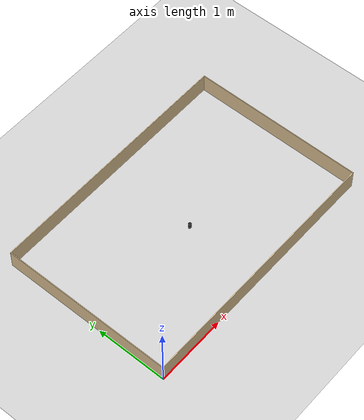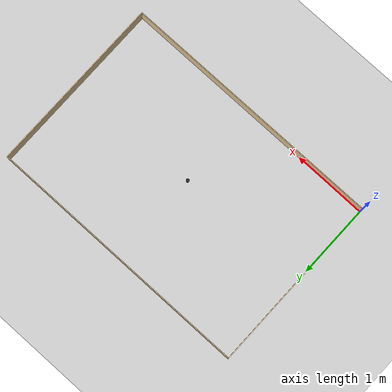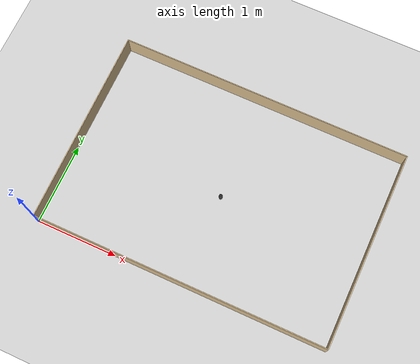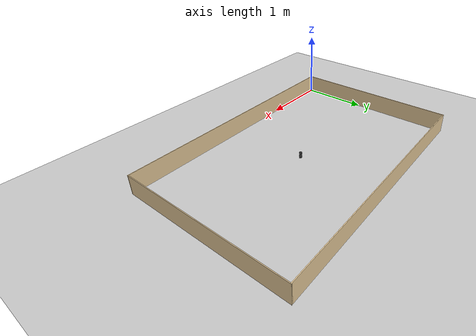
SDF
<sdf version="1.4">
 <world name="default">
  <scene><ambient>0.5 0.5 0.5 1.0</ambient><shadows>0</shadows></scene>
  <include><uri>model://ground_plane</uri></include>
  <include><uri>model://sun</uri></include>
  <include><uri>model://object</uri><name>object</name><pose>1.810 1.120 0.0 0 0 0</pose></include>
  <model name="outer_box">
   <pose>1.81 1.21 0 0 -0 0</pose>
   <link name="Wall_0">
    <collision name="Wall_0_Collision">
     <geometry><box><size>3.63 0.01 0.28</size></box></geometry>
     <pose>0 0 0.14 0 -0 0</pose>
    </collision>
    <visual name="Wall_0_Visual">
     <pose>0 0 0.14 0 -0 0</pose>
     <geometry><box><size>3.63 0.01 0.28</size></box></geometry>
     <material>
      <script><uri>file://media/materials/scripts/gazebo.material</uri><name>Gazebo/Grey</name></script>
      <ambient>0.921569 0.807843 0.615686 1</ambient>
     </material>
     <meta><layer>0</layer></meta>
    </visual>
    <pose>0 1.21 0 0 -0 0</pose>
   </link>
   <link name="Wall_2">
    <collision name="Wall_2_Collision">
     <geometry><box><size>2.43 0.01 0.28</size></box></geometry>
     <pose>0 0 0.14 0 -0 0</pose>
    </collision>
    <visual name="Wall_2_Visual">
     <pose>0 0 0.14 0 -0 0</pose>
     <geometry><box><size>2.43 0.01 0.28</size></box></geometry>
     <material>
      <script><uri>file://media/materials/scripts/gazebo.material</uri><name>Gazebo/Grey</name></script>
      <ambient>0.921569 0.807843 0.615686 1</ambient>
     </material>
     <meta><layer>0</layer></meta>
    </visual>
    <pose>1.81 0 0 0 0 -1.5708</pose>
   </link>
   <link name="Wall_4">
    <collision name="Wall_4_Collision">
     <geometry><box><size>3.63 0.01 0.28</size></box></geometry>
     <pose>0 0 0.14 0 -0 0</pose>
    </collision>
    <visual name="Wall_4_Visual">
     <pose>0 0 0.14 0 -0 0</pose>
     <geometry><box><size>3.63 0.01 0.28</size></box></geometry>
     <material>
      <script><uri>file://media/materials/scripts/gazebo.material</uri><name>Gazebo/Grey</name></script>
      <ambient>0.921569 0.807843 0.615686 1</ambient>
     </material>
     <meta><layer>0</layer></meta>
    </visual>
    <pose>0 -1.21 0 0 -0 3.14159</pose>
   </link>
   <link name="Wall_6">
    <collision name="Wall_6_Collision">
     <geometry><box><size>2.43 0.01 0.28</size></box></geometry>
     <pose>0 0 0.14 0 -0 0</pose>
    </collision>
    <visual name="Wall_6_Visual">
     <pose>0 0 0.14 0 -0 0</pose>
     <geometry><box><size>2.43 0.01 0.28</size></box></geometry>
     <material>
      <script><uri>file://media/materials/scripts/gazebo.material</uri><name>Gazebo/Grey</name></script>
      <ambient>0.921569 0.807843 0.615686 1</ambient>
     </material>
     <meta><layer>0</layer></meta>
    </visual>
    <pose>-1.81 0 0 0 -0 1.5708</pose>
   </link>
   <static>1</static>
  </model>
 </world>
</sdf>

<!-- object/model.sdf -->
<sdf version="1.6">
  <model name="object">
      <static>false</static>
      <link name="body">
        <pose>0 0 0 0 0 0</pose>

        <inertial>
          <mass>0.05</mass>
          <pose>0.01 0.021 0.04 0 0 0</pose>
          <inertia>
            <ixx>0.0003</ixx>
            <iyy>0.0002</iyy>
            <izz>0.0002</izz>
          </inertia>
      </inertial>

        <visual name="vis">
          <geometry>
            <mesh>
         	<uri>model://object/robot_object.dae</uri>
          </mesh>
          </geometry>
        </visual>

        <collision name="col">
          <geometry>
            <mesh>
             <uri>model://object/robot_object.dae</uri>
            </mesh>
          </geometry>
        </collision>
      </link>
  </model>
</sdf>
